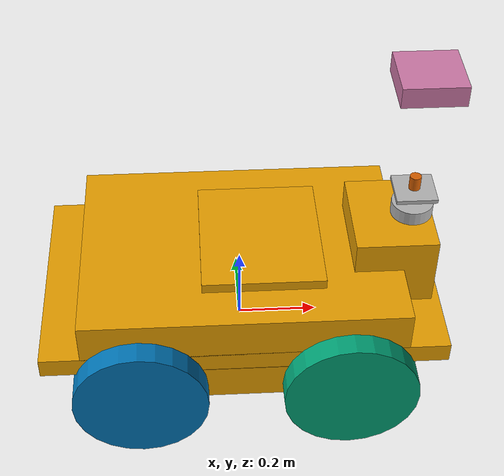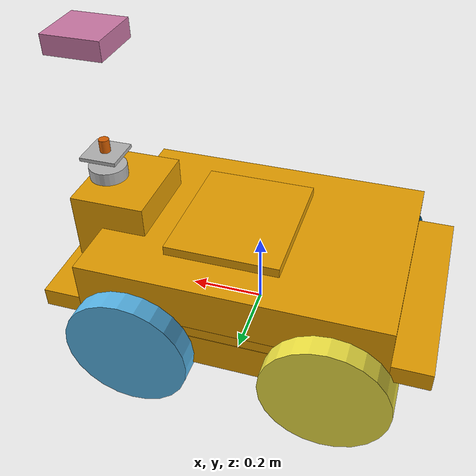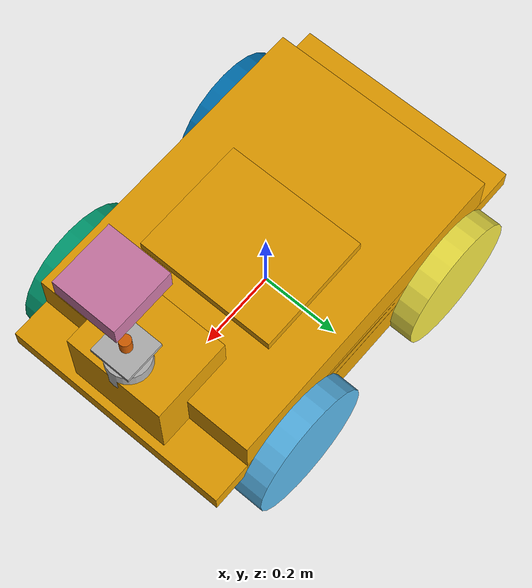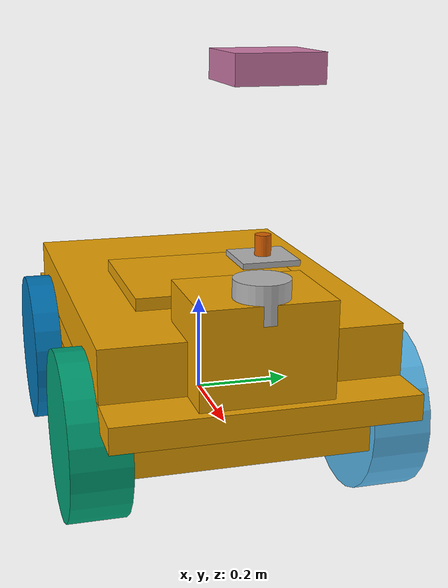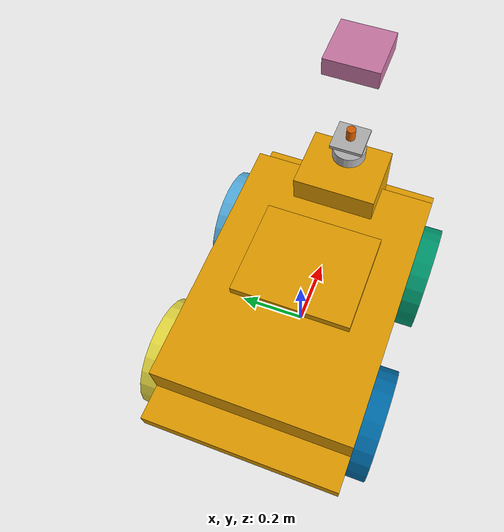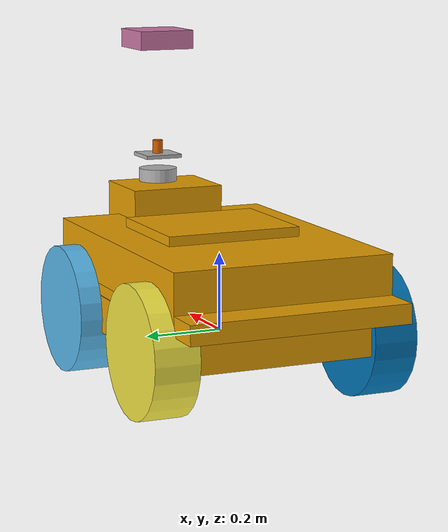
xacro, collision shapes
<?xml version="1.0" ?>
<robot name="husky_robot_model" xmlns:xacro="http://ros.org/xacro">

  <xacro:arg name="controllers_file" default="" />

  <joint name="husky_robot_model__front_left_wheel_joint" type="continuous">
    <parent link="husky_robot_model__base_link"/>
    <child link="husky_robot_model__front_left_wheel_link"/>
    <origin rpy="0  0  0" xyz="0.256    0.2854   0.03282"/>
    <axis xyz="0  1  0"/>
  </joint>
  <joint name="husky_robot_model__front_right_wheel_joint" type="continuous">
    <parent link="husky_robot_model__base_link"/>
    <child link="husky_robot_model__front_right_wheel_link"/>
    <origin rpy="0  0  0" xyz="0.256   -0.2854   0.03282"/>
    <axis xyz="0  1  0"/>
  </joint>
  <joint name="husky_robot_model__rear_left_wheel_joint" type="continuous">
    <parent link="husky_robot_model__base_link"/>
    <child link="husky_robot_model__rear_left_wheel_link"/>
    <origin rpy="0  0  0" xyz="-0.256    0.2854   0.03282"/>
    <axis xyz="0  1  0"/>
  </joint>
  <joint name="husky_robot_model__rear_right_wheel_joint" type="continuous">
    <parent link="husky_robot_model__base_link"/>
    <child link="husky_robot_model__rear_right_wheel_link"/>
    <origin rpy="0  0  0" xyz="-0.256   -0.2854   0.03282"/>
    <axis xyz="0  1  0"/>
  </joint>
  <joint name="husky_robot_model__pan_gimbal_joint" type="fixed">
    <parent link="laser"/>
    <child link="husky_robot_model__pan_gimbal_link"/>
    <origin rpy="0  0  0" xyz="0 0 0.09"/>
  </joint>

  <link name="husky_robot_model__base_link">
    <inertial>
      <mass value="46.064"/>
      <origin rpy="0  0  0" xyz="-0.00054 -0.08494  0.06232"/>
      <inertia ixx="0.615397" ixy="-0.0240585" ixz="-0.120749" iyy="1.75388" iyz="-0.0028322" izz="2.03641"/>
    </inertial>
    <collision name="husky_robot_model__base_link_collision">
      <origin rpy="0  0  0" xyz="0    0    0.12"/>
      <geometry>
        <box size="0.9874 0.5709 0.05"/>
      </geometry>
    </collision>
    <collision name="husky_robot_model__base_link_collision_bottom">
      <origin rpy="0  0  0" xyz="0     0     0.046"/>
      <geometry>
        <box size="0.80 0.5709 0.095"/>
      </geometry>
    </collision>
    <collision name="husky_robot_model__base_link_collision_1">
      <origin rpy="0  0  0" xyz="0       0       0.18562"/>
      <geometry>
        <box size="0.78992 0.5709 0.12375"/>
      </geometry>
    </collision>
    <collision name="husky_robot_model__base_link_fixed_joint_lump__camera/camera_link_collision_1">
      <origin rpy="0  0  0" xyz="0    0    0.05"/>
      <geometry>
        <box size="0.0078 0.13 0.0192"/>
      </geometry>
    </collision>
    <collision name="husky_robot_model__base_link_fixed_joint_lump__sensor_tower_8">
      <origin rpy="0  0  0" xyz="0.374  0     0.215"/>
      <geometry>
        <box size="0.2 0.25 0.225"/>
      </geometry>
    </collision>
    <collision name="husky_robot_model__base_link_fixed_joint_lump__computer_block_9">
      <origin rpy="0  0  0" xyz="0.05   0     0.185"/>
      <geometry>
        <box size="0.30 0.355 0.175"/>
      </geometry>
    </collision>
    <visual name="husky_robot_model__base_link_visual">
      <origin rpy="0  0  0" xyz="0  0  0"/>
      <geometry>
        <mesh filename="model://husky_robot_model/meshes/base_link.dae" scale="1 1 1"/>
      </geometry>
    </visual>
    <visual name="husky_robot_model__base_link_fixed_joint_lump__front_bumper_link_visual_3">
      <origin rpy="0  0  0" xyz="0.48   0     0.091"/>
      <geometry>
        <mesh filename="model://husky_robot_model/meshes/bumper.dae" scale="1 1 1"/>
      </geometry>
    </visual>
    <visual name="husky_robot_model__base_link_fixed_joint_lump__rear_bumper_link_visual_4">
      <origin rpy="0       0       3.14159" xyz="-0.48   0     0.091"/>
      <geometry>
        <mesh filename="model://husky_robot_model/meshes/bumper.dae" scale="1 1 1"/>
      </geometry>
    </visual>
    <visual name="husky_robot_model__base_link_fixed_joint_lump__top_chassis_link_visual_5">
      <origin rpy="0  0  0" xyz="0  0  0"/>
      <geometry>
        <mesh filename="model://husky_robot_model/meshes/top_chassis.dae" scale="1 1 1"/>
      </geometry>
    </visual>
    <visual name="husky_robot_model__base_link_fixed_joint_lump__user_rail_link_visual_13">
      <origin rpy="0  0  0" xyz="0.272  0     0.245"/>
      <geometry>
        <mesh filename="model://husky_robot_model/meshes/user_rail.dae" scale="1 1 1"/>
      </geometry>
    </visual>
    <visual name="husky_robot_model__base_link_fixed_joint_lump__sensor_tower_16">
      <origin rpy="0  0  0" xyz="0.374  0     0.215"/>
      <geometry>
        <box size="0.2 0.25 0.225"/>
      </geometry>
    </visual>
    <visual name="husky_robot_model__base_link_fixed_joint_lump__computer_block_17">
      <origin rpy="0  0  0" xyz="0.05   0     0.185"/>
      <geometry>
        <box size="0.30 0.355 0.175"/>
      </geometry>
    </visual>
  </link>
  <link name="husky_robot_model__front_left_wheel_link">
    <inertial>
      <mass value="2.637"/>
      <origin rpy="0  0  0" xyz="0  0  0"/>
      <inertia ixx="0.02467" ixy="0" ixz="0" iyy="0.04411" iyz="0" izz="0.02467"/>
    </inertial>
    <collision name="husky_robot_model__front_left_wheel_link_collision">
      <origin rpy="1.57079  0       0" xyz="0  0  0"/>
      <geometry>
        <cylinder length="0.1143" radius="0.1651"/>
      </geometry>
    </collision>
    <visual name="husky_robot_model__front_left_wheel_link_visual">
      <origin rpy="0  0  0" xyz="0  0  0"/>
      <geometry>
        <mesh filename="model://husky_robot_model/meshes/wheel.dae" scale="1 1 1"/>
      </geometry>
    </visual>
  </link>
  <link name="husky_robot_model__front_right_wheel_link">
    <inertial>
      <mass value="2.637"/>
      <origin rpy="0  0  0" xyz="0  0  0"/>
      <inertia ixx="0.02467" ixy="0" ixz="0" iyy="0.04411" iyz="0" izz="0.02467"/>
    </inertial>
    <collision name="husky_robot_model__front_right_wheel_link_collision">
      <origin rpy="1.57079  0       0" xyz="0  0  0"/>
      <geometry>
        <cylinder length="0.1143" radius="0.1651"/>
      </geometry>
    </collision>
    <visual name="husky_robot_model__front_right_wheel_link_visual">
      <origin rpy="0  0  0" xyz="0  0  0"/>
      <geometry>
        <mesh filename="model://husky_robot_model/meshes/wheel.dae" scale="1 1 1"/>
      </geometry>
    </visual>
  </link>
  <link name="husky_robot_model__rear_left_wheel_link">
    <inertial>
      <mass value="2.637"/>
      <origin rpy="0  0  0" xyz="0  0  0"/>
      <inertia ixx="0.02467" ixy="0" ixz="0" iyy="0.04411" iyz="0" izz="0.02467"/>
    </inertial>
    <collision name="husky_robot_model__rear_left_wheel_link_collision">
      <origin rpy="1.57079  0       0" xyz="0  0  0"/>
      <geometry>
        <cylinder length="0.1143" radius="0.1651"/>
      </geometry>
    </collision>
    <visual name="husky_robot_model__rear_left_wheel_link_visual">
      <origin rpy="0  0  0" xyz="0  0  0"/>
      <geometry>
        <mesh filename="model://husky_robot_model/meshes/wheel.dae" scale="1 1 1"/>
      </geometry>
    </visual>
  </link>
  <link name="husky_robot_model__rear_right_wheel_link">
    <inertial>
      <mass value="2.637"/>
      <origin rpy="0  0  0" xyz="0  0  0"/>
      <inertia ixx="0.02467" ixy="0" ixz="0" iyy="0.04411" iyz="0" izz="0.02467"/>
    </inertial>
    <collision name="husky_robot_model__rear_right_wheel_link_collision">
      <origin rpy="1.57079  0       0" xyz="0  0  0"/>
      <geometry>
        <cylinder length="0.1143" radius="0.1651"/>
      </geometry>
    </collision>
    <visual name="husky_robot_model__rear_right_wheel_link_visual">
      <origin rpy="0  0  0" xyz="0  0  0"/>
      <geometry>
        <mesh filename="model://husky_robot_model/meshes/wheel.dae" scale="1 1 1"/>
      </geometry>
    </visual>
  </link>
  <link name="husky_robot_model__pan_gimbal_link">
    <inertial>
      <mass value="0.1"/>
      <origin rpy="0  0  0" xyz="0  0  0"/>
      <inertia ixx="0.000016875" ixy="0" ixz="0" iyy="0.00000001" iyz="0" izz="0.000016875"/>
    </inertial>
    <collision name="husky_robot_model__pan_gimbal_link_collision">
      <origin rpy="0  0  0" xyz="0  0  0"/>
      <geometry>
        <cylinder length="0.045" radius="0.014"/>
      </geometry>
    </collision>
    <visual name="husky_robot_model__pan_gimbal_link_visual">
      <origin rpy="0  0  0" xyz="0  0  0"/>
      <geometry>
        <cylinder length="0.5" radius="0.014"/>
      </geometry>
    </visual>
  </link>

<link name="camera_link">
    <inertial>
      <mass value="0.1"/>
      <origin xyz="0 0 0.05" rpy="0 0 0"/>
      <inertia ixx="0.001" ixy="0.0" ixz="0.0" iyy="0.001" iyz="0.0" izz="0.001"/>
    </inertial>
    <visual>
      <origin xyz="0 0 0" rpy="0 0 0"/>
      <geometry>
        <box size="0.15 0.15 0.15"/>
      </geometry>
    </visual>
    <collision>
      <origin xyz="0 0 0" rpy="0 0 0"/>
      <geometry>
        <box size="0.15 0.15 0.05"/>
      </geometry>
    </collision>
  </link>

  <joint name="camera_joint" type="revolute">
    <parent link="husky_robot_model__pan_gimbal_link"/>
    <child link="camera_link"/>
    <origin xyz="0 0 0.3" rpy="0 0 0"/>
    <axis xyz="0 0 1"/>
    <limit lower="-3.14" upper="3.14" effort="0.5" velocity="1.0"/>
  </joint>

<link name="laser">
    <inertial>
      <mass value="0.09"/>
      <inertia ixx="4.275e-05" ixy="0" ixz="0" iyy="4.275e-05" iyz="0" izz="5.5125e-05"/>
    </inertial>
    <collision name="husky_robot_model__base_link_fixed_joint_lump__velodyne_base_link_collision_6">
      <origin rpy="0  0  0" xyz="0 0 0"/>
      <geometry>
        <cylinder length="0.0717" radius="0.0516"/>
      </geometry>
    </collision>
    <collision name="husky_robot_model__base_link_fixed_joint_lump__velodyne_gimbal_plate_base_link_collision_7">
      <origin rpy="0  0  0" xyz="0 0 0.0717"/>
      <geometry>
        <box size="0.1 0.1 0.01"/>
      </geometry>
    </collision>
    <visual name="husky_robot_model__base_link_fixed_joint_lump__velodyne_base_link_visual_10">
      <origin rpy="0  0  0" xyz="0  0     0"/>
      <geometry>
        <mesh filename="model://husky_robot_model/meshes/VLP16_base_1.dae" scale="1 1 1"/>
      </geometry>
    </visual>
    <visual name="husky_robot_model__base_link_fixed_joint_lump__velodyne_base_link_visual_11">
      <origin rpy="0  0  0" xyz="0  0     0"/>
      <geometry>
        <mesh filename="model://husky_robot_model/meshes/VLP16_base_2.dae" scale="1 1 1"/>
      </geometry>
    </visual>
    <visual name="husky_robot_model__base_link_fixed_joint_lump__velodyne_visual_12">
      <origin rpy="0  0  0" xyz="0  0     0"/>
      <geometry>
        <mesh filename="model://husky_robot_model/meshes/VLP16_scan.dae" scale="1 1 1"/>
      </geometry>
    </visual>
    <visual name="husky_robot_model__base_link_fixed_joint_lump__velodyne_gimbal_plate_15">
      <origin rpy="0  0  0" xyz="0 0 0.0717"/>
      <geometry>
        <box size="0.06 0.06 0.01"/>
      </geometry>
    </visual>
  </link>

  <joint name="rplidar_joint" type="fixed">
    <origin xyz="0.424 0 0.327" rpy="0 0 0" />
    <parent link="husky_robot_model__base_link"/>
    <child link="laser"/>
  </joint>

<ros2_control name="GazeboSystem" type="system">
  <hardware>
    <plugin>gazebo_ros2_control/GazeboSystem</plugin>
  </hardware>
  <joint name="husky_robot_model__front_left_wheel_joint">
    <command_interface name="velocity">
      <param name="min">-10</param>
      <param name="max">10</param>
    </command_interface>
    <state_interface name="position"/>
    <state_interface name="velocity"/>
  </joint>
  <joint name="husky_robot_model__rear_left_wheel_joint">
    <command_interface name="velocity">
      <param name="min">-10</param>
      <param name="max">10</param>
    </command_interface>
    <state_interface name="position"/>
    <state_interface name="velocity"/>
  </joint>
  <joint name="husky_robot_model__front_right_wheel_joint">
    <command_interface name="velocity">
      <param name="min">-10</param>
      <param name="max">10</param>
    </command_interface>
    <state_interface name="position"/>
    <state_interface name="velocity"/>
  </joint>
  <joint name="husky_robot_model__rear_right_wheel_joint">
    <command_interface name="velocity">
      <param name="min">-10</param>
      <param name="max">10</param>
    </command_interface>
    <state_interface name="position"/>
    <state_interface name="velocity"/>
  </joint>
</ros2_control>

<gazebo>
  <plugin filename="libgazebo_ros2_control.so" name="gazebo_ros2_control">
    <parameters>$(arg controllers_file)</parameters>
  </plugin>
</gazebo>

</robot>
